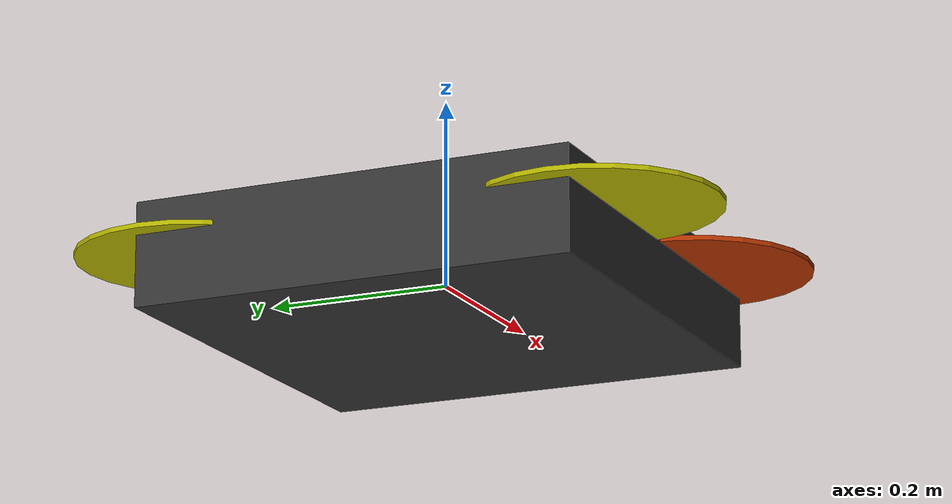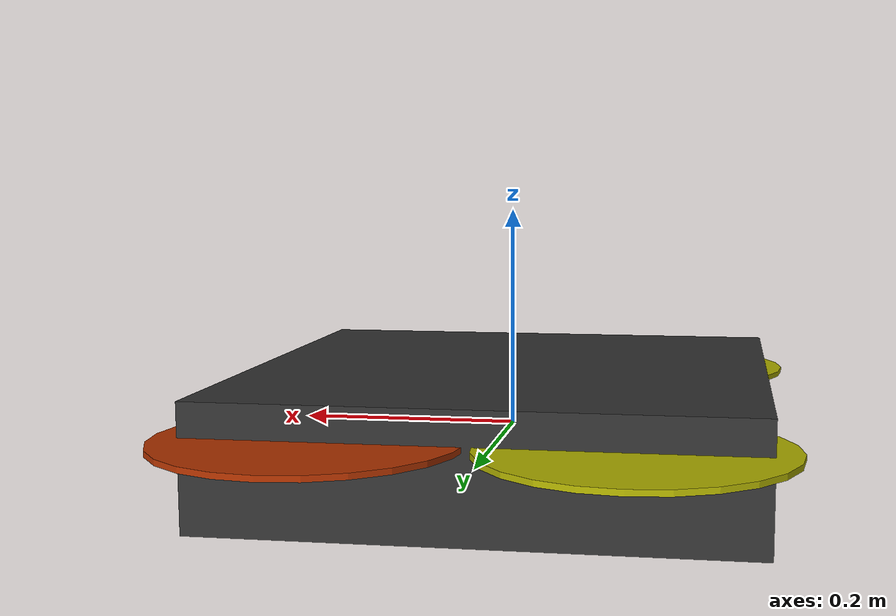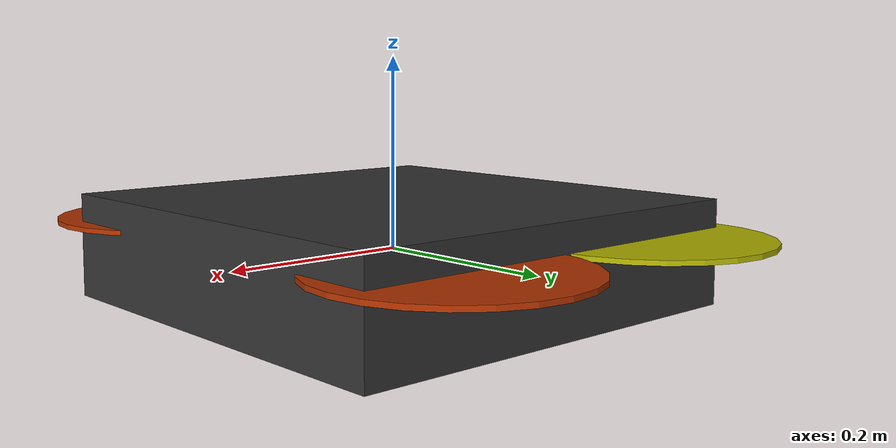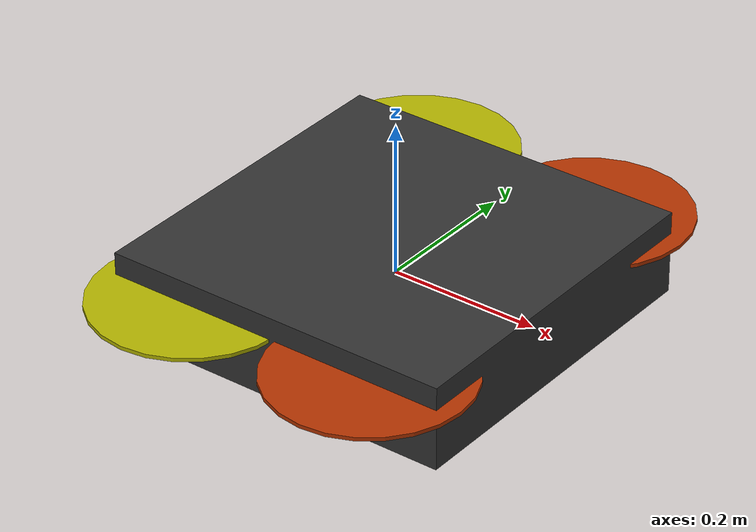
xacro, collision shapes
<?xml version="1.0"?>
<robot name="iris" xmlns:xacro="http://ros.org/wiki/xacro">
    <material name="gray">
        <color rgba="0.2 0.2 0.2 1"/>
    </material>

    <material name="yellow">
        <color rgba="0.7 0.7 0 1"/>
    </material>

    <material name="orange">
        <color rgba="0.7 0.2 0 1"/>
    </material>

    <!-- Base -->
    <link name="base_link"/>

    <link name="chassis_link">
        <inertial>
            <mass value="1.5" />
            <origin xyz="0 0 0"/>
            <inertia ixx="0.029125" ixy="0.0" ixz="0.0" iyy="0.029125" iyz="0.0" izz="0.055225" />
        </inertial>
        <visual>
            <origin xyz="0 0 0" rpy="0 0 0"/>
            <geometry>
                <mesh filename="package://uav_inspections_ros2/meshes/iris.stl"/>
            </geometry>
            <material name="gray"/>
        </visual>
        <collision>
            <origin xyz="0 0 0" rpy="0 0 0"/>
            <geometry>
                <box size="0.47 0.47 0.11"/>
            </geometry>
        </collision>
    </link>

    <joint name="chassis_joint" type="fixed">
    <origin xyz="0 0 0"/>
    <parent link="base_link"/>
    <child link="chassis_link"/>
    </joint>

    <!-- Rotors -->
    <link name="rotor_0">
        <inertial>
            <mass value="0.005" />
            <origin xyz="0 0 0"/>
            <inertia ixx="9.75e-07" ixy="0.0" ixz="0.0" iyy="0.000273104" iyz="0.0" izz="0.000273104" />
        </inertial>
        <visual>
            <origin xyz="0 0 0" rpy="0 0 0"/>
            <geometry>
                <mesh filename="package://uav_inspections_ros2/meshes/iris_prop_ccw.stl"/>
            </geometry>
            <material name="orange"/>
        </visual>
        <collision>
            <origin xyz="0 0 0" rpy="0 0 0"/>
            <geometry>
                <cylinder length="0.005" radius="0.128" />
            </geometry>
        </collision>
    </link>

    <joint name="rotor_0_joint" type="continuous">
        <axis xyz="0 0 1"/>
        <origin xyz="0.13 -0.22 0.023" rpy="0 0 0" />
        <parent link="base_link"/>
        <child link="rotor_0" />
    </joint>

    <link name="rotor_1">
        <inertial>
            <mass value="0.005" />
            <origin xyz="0 0 0"/>
            <inertia ixx="9.75e-07" ixy="0.0" ixz="0.0" iyy="0.000273104" iyz="0.0" izz="0.000273104" />
        </inertial>
        <visual>
            <origin xyz="0 0 0" rpy="0 0 0"/>
            <geometry>
                <mesh filename="package://uav_inspections_ros2/meshes/iris_prop_ccw.stl"/>
            </geometry>
            <material name="yellow"/>
        </visual>
        <collision>
            <origin xyz="0 0 0" rpy="0 0 0"/>
            <geometry>
                <cylinder length="0.005" radius="0.128" />
            </geometry>
        </collision>
    </link>

    <joint name="rotor_1_joint" type="continuous">
        <axis xyz="0 0 1"/>
        <origin xyz="-0.13 0.22 0.023" rpy="0 0 0" />
        <parent link="base_link"/>
        <child link="rotor_1" />
    </joint>

    <link name="rotor_2">
        <inertial>
            <mass value="0.005" />
            <origin xyz="0 0 0"/>
            <inertia ixx="9.75e-07" ixy="0.0" ixz="0.0" iyy="0.000273104" iyz="0.0" izz="0.000273104" />
        </inertial>
        <visual>
            <origin xyz="0 0 0" rpy="0 0 0"/>
            <geometry>
                <mesh filename="package://uav_inspections_ros2/meshes/iris_prop_cw.stl"/>
            </geometry>
            <material name="orange"/>
        </visual>
        <collision>
            <origin xyz="0 0 0" rpy="0 0 0"/>
            <geometry>
                <cylinder length="0.005" radius="0.128" />
            </geometry>
        </collision>
    </link>

    <joint name="rotor_2_joint" type="continuous">
        <axis xyz="0 0 1"/>
        <origin xyz="0.13 0.22 0.023" rpy="0 0 0" />
        <parent link="base_link"/>
        <child link="rotor_2" />
    </joint>

    <link name="rotor_3">
        <inertial>
            <mass value="0.005" />
            <origin xyz="0 0 0"/>
            <inertia ixx="9.75e-07" ixy="0.0" ixz="0.0" iyy="0.000273104" iyz="0.0" izz="0.000273104" />
        </inertial>
        <visual>
            <origin xyz="0 0 0" rpy="0 0 0"/>
            <geometry>
                <mesh filename="package://uav_inspections_ros2/meshes/iris_prop_cw.stl"/>
            </geometry>
            <material name="yellow"/>
        </visual>
        <collision>
            <origin xyz="0 0 0" rpy="0 0 0"/>
            <geometry>
                <cylinder length="0.005" radius="0.128" />
            </geometry>
        </collision>
    </link>

    <joint name="rotor_3_joint" type="continuous">
        <axis xyz="0 0 1"/>
        <origin xyz="-0.13 -0.22 0.023" rpy="0 0 0" />
        <parent link="base_link"/>
        <child link="rotor_3" />
    </joint>

    <!-- Sensors -->
    <link name="camera_link"/>

    <joint name="camera_joint" type="fixed">
      <origin xyz="0.15 0 -0.01" rpy="0 0 0" />
      <parent link="base_link"/>
      <child link="camera_link" />
    </joint>

    <link name="downward_camera_link"/>

    <joint name="downward_camera_joint" type="fixed">
      <origin xyz="0.15 0 -0.01" rpy="0 1.57079632679 0" />
      <parent link="base_link"/>
      <child link="downward_camera_link" />
    </joint>

    <link name="camera_optical_link"/>

    <joint name="camera_optical_joint" type="fixed">
      <origin xyz="0 0 0" rpy="-1.57079632679 0 -1.57079632679"/>
      <parent link="camera_link"/>
      <child link="camera_optical_link" />
    </joint>

    <link name="downward_camera_optical_link"/>

    <joint name="downward_camera_optical_joint" type="fixed">
      <origin xyz="0 0 0" rpy="-1.57079632679 0 -1.57079632679"/>
      <parent link="downward_camera_link"/>
      <child link="downward_camera_optical_link" />
    </joint>

    <link name="imu_link">
        <inertial>
            <mass value="0.015" />
            <origin xyz="0 0 0"/>
            <inertia ixx="1e-05" ixy="0.0" ixz="0.0" iyy="1e-05" iyz="0.0" izz="1e-05" />
        </inertial>
        <visual>
            <origin xyz="0 0 0" rpy="0 0 0"/>
            <geometry>
                <cylinder length="0.01" radius="0.002" />
            </geometry>
        </visual>
        <collision>
            <origin xyz="0 0 0" rpy="0 0 0"/>
            <geometry>
                <cylinder length="0.01" radius="0.002" />
            </geometry>
        </collision>
    </link>

    <joint name="imu_joint" type="revolute">
      <origin xyz="0.1 0 0" rpy="0 0 0" />
      <parent link="base_link"/>
      <child link="imu_link" />
      <limit effort="0" velocity="0" lower="0" upper="0" />
    </joint>

    <link name="gps_link">
        <inertial>
            <mass value="0.015" />
            <origin xyz="0 0 0"/>
            <inertia ixx="1e-05" ixy="0.0" ixz="0.0" iyy="1e-05" iyz="0.0" izz="1e-05" />
        </inertial>
        <visual>
            <origin xyz="0 0 0" rpy="0 0 0"/>
            <geometry>
                <cylinder length="0.01" radius="0.002" />
            </geometry>
        </visual>
        <collision>
            <origin xyz="0 0 0" rpy="0 0 0"/>
            <geometry>
                <cylinder length="0.01" radius="0.002" />
            </geometry>
        </collision>
    </link>

    <joint name="gps_joint" type="revolute">
      <origin xyz="-0.1 0 0" rpy="0 0 0" />
      <parent link="base_link"/>
      <child link="gps_link" />
      <limit effort="0" velocity="0" lower="0" upper="0" />
    </joint>

    <link name="magnetometer_link"/>

    <joint name="magnetometer_joint" type="fixed">
      <origin xyz="0 0 0" rpy="0 0 0" />
      <parent link="base_link"/>
      <child link="magnetometer_link" />
    </joint>

    <link name="barometer_link"/>

    <joint name="barometer_joint" type="fixed">
      <origin xyz="0 0 0" rpy="0 0 0" />
      <parent link="base_link"/>
      <child link="barometer_link" />
    </joint>

    <!-- General Gazebo -->
    <gazebo reference="chassis_link">
       <material>Gazebo/Grey</material>
    </gazebo>

    <gazebo reference="rotor_0">
       <material>Gazebo/Orange</material>
    </gazebo>

    <gazebo reference="rotor_1">
       <material>Gazebo/Yellow</material>
    </gazebo>

    <gazebo reference="rotor_2">
       <material>Gazebo/Orange</material>
    </gazebo>

    <gazebo reference="rotor_3">
       <material>Gazebo/Yellow</material>
    </gazebo>

    <!-- ROS2 Gazebo -->
    <gazebo>
    <plugin name="ground_truth_odom" filename="libgazebo_ros_p3d.so">
        <ros>
            <argument>odom:=odom/perfect</argument>
        </ros>
        <body_name>base_link</body_name>
        <frame_name>odom</frame_name>
        <update_rate>10</update_rate>
        <xyz_offset>0 0 0</xyz_offset>
        <rpy_offset>0 0 0</rpy_offset>
        <gaussian_noise>0</gaussian_noise>
    </plugin>
    </gazebo>

    <gazebo reference="camera_link">
    <sensor type="depth" name="camera">
        <always_on>true</always_on>
        <update_rate>10</update_rate>
        <camera name="camera">
        <horizontal_fov>1.2</horizontal_fov>
        <image>
          <width>640</width>
          <height>480</height>
          <format>R8G8B8</format>
        </image>
        <depth_camera>
        </depth_camera>
        <clip>
          <near>0.02</near>
          <far>12</far>
        </clip>
        <distortion>
          <k1>0.0</k1>
          <k2>0.0</k2>
          <k3>0.0</k3>
          <p1>0.0</p1>
          <p2>0.0</p2>
        </distortion>
      </camera>
      <plugin name="simulated_camera" filename="libgazebo_ros_camera.so">
        <camera_name>camera</camera_name>
        <frame_name>camera_optical_link</frame_name>
        <hack_baseline>0.07</hack_baseline>
        <min_depth>0.001</min_depth>
      </plugin>
    </sensor>
    </gazebo>

    <gazebo reference="downward_camera_link">
    <sensor type="depth" name="downward_camera">
        <always_on>true</always_on>
        <update_rate>10</update_rate>
        <camera name="downward_camera">
        <horizontal_fov>1.2</horizontal_fov>
        <image>
          <width>640</width>
          <height>480</height>
          <format>R8G8B8</format>
        </image>
        <depth_camera>
        </depth_camera>
        <clip>
          <near>0.02</near>
          <far>12</far>
        </clip>
        <distortion>
          <k1>0.0</k1>
          <k2>0.0</k2>
          <k3>0.0</k3>
          <p1>0.0</p1>
          <p2>0.0</p2>
        </distortion>
      </camera>
      <plugin name="simulated_downward_camera" filename="libgazebo_ros_camera.so">
        <camera_name>downward_camera</camera_name>
        <frame_name>downward_camera_optical_link</frame_name>
        <hack_baseline>0.07</hack_baseline>
        <min_depth>0.001</min_depth>
      </plugin>
    </sensor>
    </gazebo>

    <gazebo>
    <plugin name="gazebo_ros_joint_state_publisher" filename="libgazebo_ros_joint_state_publisher.so">
        <ros>
          <namespace></namespace>
        </ros>
        <update_rate>10</update_rate>
        <joint_name>rotor_0_joint</joint_name>
        <joint_name>rotor_1_joint</joint_name>
        <joint_name>rotor_2_joint</joint_name>
        <joint_name>rotor_3_joint</joint_name>
        <joint_name>imu_joint</joint_name>
        <joint_name>gps_joint</joint_name>
    </plugin>
    </gazebo>

    <ros2_control name="GazeboSystem" type="system">
        <hardware>
            <plugin>fake_components/GenericSystem</plugin>
        </hardware>
    </ros2_control>

    <!-- PX4 Gazebo -->
    <gazebo reference="gps_link">
        <sensor name="gps" type="gps">
        <update_rate>10</update_rate>
        <always_on>true</always_on>
        <visualize>false</visualize>
        <!-- GpsSensor noise currently not used -->
        <plugin name="gps_plugin" filename="libgazebo_gps_plugin.so">
          <robotNamespace></robotNamespace>
          <topic>/gps</topic>
          <linkName>gps_link</linkName>
          <update_rate>10</update_rate>
          <always_on>true</always_on>
          <gpsNoise>true</gpsNoise>
          <gpsXYRandomWalk>2.0</gpsXYRandomWalk>
          <gpsZRandomWalk>4.0</gpsZRandomWalk>
          <gpsXYNoiseDensity>2.0e-4</gpsXYNoiseDensity>
          <gpsZNoiseDensity>4.0e-4</gpsZNoiseDensity>
          <gpsVXYNoiseDensity>0.2</gpsVXYNoiseDensity>
          <gpsVZNoiseDensity>0.4</gpsVZNoiseDensity>
        </plugin>
      </sensor>
    </gazebo>

    <gazebo>
    <plugin name='rotors_gazebo_imu_plugin' filename='libgazebo_imu_plugin.so'>
        <robotNamespace></robotNamespace>
      <linkName>imu_link</linkName>
      <imuTopic>/imu</imuTopic>
      <gyroscopeNoiseDensity>0.00018665</gyroscopeNoiseDensity>
      <gyroscopeRandomWalk>3.8785e-05</gyroscopeRandomWalk>
      <gyroscopeBiasCorrelationTime>1000.0</gyroscopeBiasCorrelationTime>
      <gyroscopeTurnOnBiasSigma>0.0087</gyroscopeTurnOnBiasSigma>
      <accelerometerNoiseDensity>0.00186</accelerometerNoiseDensity>
      <accelerometerRandomWalk>0.006</accelerometerRandomWalk>
      <accelerometerBiasCorrelationTime>300.0</accelerometerBiasCorrelationTime>
      <accelerometerTurnOnBiasSigma>0.196</accelerometerTurnOnBiasSigma>
    </plugin>
    </gazebo>

    <gazebo>
    <plugin name='front_right_motor_model' filename='libgazebo_motor_model.so'>
      <robotNamespace/>
      <jointName>rotor_0_joint</jointName>
      <linkName>rotor_0</linkName>
      <turningDirection>ccw</turningDirection>
      <timeConstantUp>0.0125</timeConstantUp>
      <timeConstantDown>0.025</timeConstantDown>
      <maxRotVelocity>1100</maxRotVelocity>
      <motorConstant>5.84e-06</motorConstant>
      <momentConstant>0.06</momentConstant>
      <commandSubTopic>/gazebo/command/motor_speed</commandSubTopic>
      <motorNumber>0</motorNumber>
      <rotorDragCoefficient>0.000175</rotorDragCoefficient>
      <rollingMomentCoefficient>1e-06</rollingMomentCoefficient>
      <motorSpeedPubTopic>/motor_speed/0</motorSpeedPubTopic>
      <rotorVelocitySlowdownSim>10</rotorVelocitySlowdownSim>
    </plugin>
    </gazebo>

    <gazebo>
    <plugin name='back_left_motor_model' filename='libgazebo_motor_model.so'>
      <robotNamespace/>
      <jointName>rotor_1_joint</jointName>
      <linkName>rotor_1</linkName>
      <turningDirection>ccw</turningDirection>
      <timeConstantUp>0.0125</timeConstantUp>
      <timeConstantDown>0.025</timeConstantDown>
      <maxRotVelocity>1100</maxRotVelocity>
      <motorConstant>5.84e-06</motorConstant>
      <momentConstant>0.06</momentConstant>
      <commandSubTopic>/gazebo/command/motor_speed</commandSubTopic>
      <motorNumber>1</motorNumber>
      <rotorDragCoefficient>0.000175</rotorDragCoefficient>
      <rollingMomentCoefficient>1e-06</rollingMomentCoefficient>
      <motorSpeedPubTopic>/motor_speed/1</motorSpeedPubTopic>
      <rotorVelocitySlowdownSim>10</rotorVelocitySlowdownSim>
    </plugin>
    </gazebo>

    <gazebo>
    <plugin name='front_left_motor_model' filename='libgazebo_motor_model.so'>
      <robotNamespace/>
      <jointName>rotor_2_joint</jointName>
      <linkName>rotor_2</linkName>
      <turningDirection>cw</turningDirection>
      <timeConstantUp>0.0125</timeConstantUp>
      <timeConstantDown>0.025</timeConstantDown>
      <maxRotVelocity>1100</maxRotVelocity>
      <motorConstant>5.84e-06</motorConstant>
      <momentConstant>0.06</momentConstant>
      <commandSubTopic>/gazebo/command/motor_speed</commandSubTopic>
      <motorNumber>2</motorNumber>
      <rotorDragCoefficient>0.000175</rotorDragCoefficient>
      <rollingMomentCoefficient>1e-06</rollingMomentCoefficient>
      <motorSpeedPubTopic>/motor_speed/2</motorSpeedPubTopic>
      <rotorVelocitySlowdownSim>10</rotorVelocitySlowdownSim>
    </plugin>
    </gazebo>

    <gazebo>
    <plugin name='back_right_motor_model' filename='libgazebo_motor_model.so'>
      <robotNamespace/>
      <jointName>rotor_3_joint</jointName>
      <linkName>rotor_3</linkName>
      <turningDirection>cw</turningDirection>
      <timeConstantUp>0.0125</timeConstantUp>
      <timeConstantDown>0.025</timeConstantDown>
      <maxRotVelocity>1100</maxRotVelocity>
      <motorConstant>5.84e-06</motorConstant>
      <momentConstant>0.06</momentConstant>
      <commandSubTopic>/gazebo/command/motor_speed</commandSubTopic>
      <motorNumber>3</motorNumber>
      <rotorDragCoefficient>0.000175</rotorDragCoefficient>
      <rollingMomentCoefficient>1e-06</rollingMomentCoefficient>
      <motorSpeedPubTopic>/motor_speed/3</motorSpeedPubTopic>
      <rotorVelocitySlowdownSim>10</rotorVelocitySlowdownSim>
    </plugin>
    </gazebo>

    <gazebo>
    <plugin name='barometer_plugin' filename='libgazebo_barometer_plugin.so'>
      <robotNamespace/>
      <pubRate>50</pubRate>
      <baroTopic>/baro</baroTopic>
      <baroDriftPaPerSec>0</baroDriftPaPerSec>
    </plugin>
    </gazebo>

    <gazebo>
    <plugin name='magnetometer_plugin' filename='libgazebo_magnetometer_plugin.so'>
      <robotNamespace/>
      <pubRate>100</pubRate>
      <noiseDensity>0.0004</noiseDensity>
      <randomWalk>6.4e-06</randomWalk>
      <biasCorrelationTime>600</biasCorrelationTime>
      <magTopic>/mag</magTopic>
    </plugin>
    </gazebo>

    <gazebo>
    <plugin name='mavlink_interface' filename='libgazebo_mavlink_interface.so'>
      <robotNamespace/>
      <imuSubTopic>/imu</imuSubTopic>
      <magSubTopic>/mag</magSubTopic>
      <baroSubTopic>/baro</baroSubTopic>
      <mavlink_addr>INADDR_ANY</mavlink_addr>
      <mavlink_udp_port>14560</mavlink_udp_port>
      <mavlink_tcp_port>4560</mavlink_tcp_port>
      <serialEnabled>false</serialEnabled>
      <serialDevice>/dev/ttyACM0</serialDevice>
      <baudRate>921600</baudRate>
      <qgc_addr>INADDR_ANY</qgc_addr>
      <qgc_udp_port>14550</qgc_udp_port>
      <sdk_addr>INADDR_ANY</sdk_addr>
      <sdk_udp_port>14540</sdk_udp_port>
      <hil_mode>false</hil_mode>
      <hil_state_level>false</hil_state_level>
      <vehicle_is_tailsitter>false</vehicle_is_tailsitter>
      <send_vision_estimation>false</send_vision_estimation>
      <send_odometry>true</send_odometry>
      <enable_lockstep>true</enable_lockstep>
      <use_tcp>true</use_tcp>
      <motorSpeedCommandPubTopic>/gazebo/command/motor_speed</motorSpeedCommandPubTopic>
      <control_channels>
        <channel name='rotor1'>
          <input_index>0</input_index>
          <input_offset>0</input_offset>
          <input_scaling>1000</input_scaling>
          <zero_position_disarmed>0</zero_position_disarmed>
          <zero_position_armed>100</zero_position_armed>
          <joint_control_type>velocity</joint_control_type>
        </channel>
        <channel name='rotor2'>
          <input_index>1</input_index>
          <input_offset>0</input_offset>
          <input_scaling>1000</input_scaling>
          <zero_position_disarmed>0</zero_position_disarmed>
          <zero_position_armed>100</zero_position_armed>
          <joint_control_type>velocity</joint_control_type>
        </channel>
        <channel name='rotor3'>
          <input_index>2</input_index>
          <input_offset>0</input_offset>
          <input_scaling>1000</input_scaling>
          <zero_position_disarmed>0</zero_position_disarmed>
          <zero_position_armed>100</zero_position_armed>
          <joint_control_type>velocity</joint_control_type>
        </channel>
        <channel name='rotor4'>
          <input_index>3</input_index>
          <input_offset>0</input_offset>
          <input_scaling>1000</input_scaling>
          <zero_position_disarmed>0</zero_position_disarmed>
          <zero_position_armed>100</zero_position_armed>
          <joint_control_type>velocity</joint_control_type>
        </channel>
      </control_channels>
    </plugin>
    </gazebo>
    <gazebo>
    <plugin name='multirotor_base_plugin' filename='libgazebo_multirotor_base_plugin.so'>
        <robotNamespace></robotNamespace>
        <linkName>base_link</linkName>
        <rotorVelocitySlowdownSim>10</rotorVelocitySlowdownSim>
    </plugin>
    </gazebo>

    <gazebo>
    <plugin name='rotors_groundtruth_plugin' filename='libgazebo_groundtruth_plugin.so'>
      <robotNamespace/>
    </plugin>
    </gazebo>

</robot>
